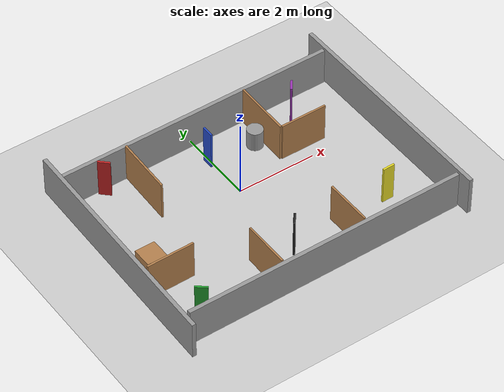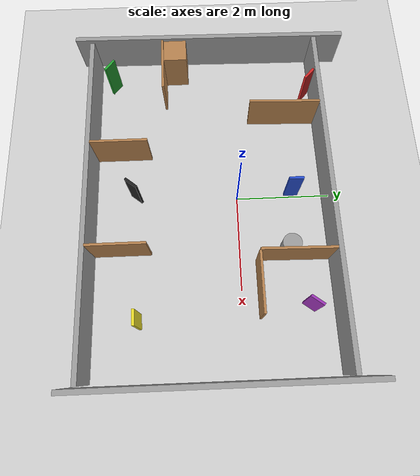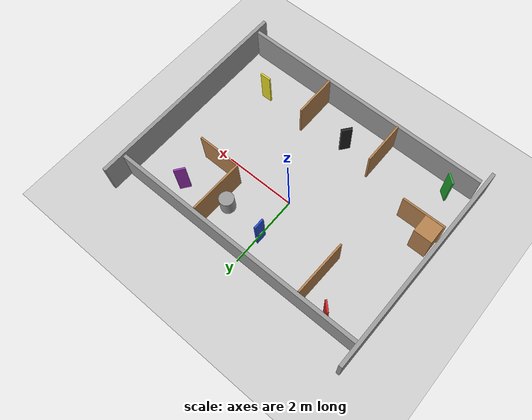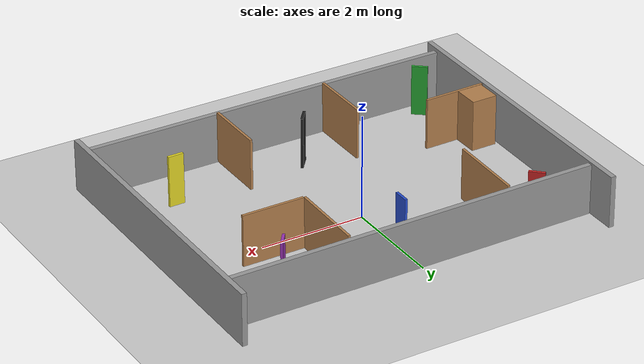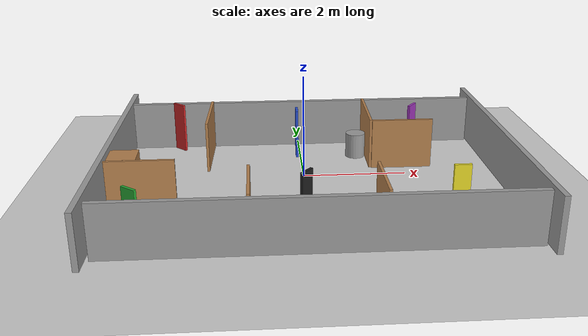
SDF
<sdf version="1.4">
 <world name="default">
  <light name="sun" type="directional">
   <pose>0 0 10 0 -0 0</pose>
   <diffuse>0.8 0.8 0.8 1</diffuse>
   <specular>0.2 0.2 0.2 1</specular>
   <attenuation>
    <range>1000</range>
    <constant>0.9</constant>
    <linear>0.01</linear>
    <quadratic>0.001</quadratic>
   </attenuation>
   <direction>-0.5 0.1 -0.9</direction>
  </light>
  <model name="ground_plane">
   <static>1</static>
   <link name="link">
    <collision name="collision">
     <geometry><plane><normal>0 0 1</normal><size>9 7</size></plane></geometry>
     <surface><friction><ode><mu>100</mu><mu2>50</mu2></ode></friction></surface>
    </collision>
    <visual name="visual">
     <cast_shadows>0</cast_shadows>
     <geometry><plane><normal>0 0 1</normal><size>9 7</size></plane></geometry>
     <material>
      <script><uri>file://media/materials/scripts/gazebo.material</uri><name>Gazebo/Grey</name></script>
     </material>
    </visual>
    <velocity_decay><linear>0</linear><angular>0</angular></velocity_decay>
   </link>
  </model>
  <physics type="ode">
   <max_step_size>0.01</max_step_size>
   <real_time_factor>1</real_time_factor>
   <real_time_update_rate>100</real_time_update_rate>
   <gravity>0 0 -9.8</gravity>
  </physics>
  <scene><ambient>0.4 0.4 0.4 1</ambient><background>0.7 0.7 0.7 1</background><shadows>1</shadows></scene>
  <model name="wall_1">
   <pose>-3.58387 -0.478378 0.485002 0.005008 7.4e-05 -0.014703</pose>
   <link name="link">
    <inertial>
     <mass>1</mass>
     <inertia><ixx>1</ixx><ixy>0</ixy><ixz>0</ixz><iyy>1</iyy><iyz>0</iyz><izz>1</izz></inertia>
    </inertial>
    <collision name="collision"><geometry><box><size>0.1 6 1</size></box></geometry></collision>
    <visual name="visual">
     <geometry><box><size>0.1 6 1</size></box></geometry>
     <material>
      <script><uri>file://media/materials/scripts/gazebo.material</uri><name>Gazebo/Grey</name></script>
     </material>
    </visual>
    <velocity_decay><linear>0</linear><angular>0</angular></velocity_decay>
   </link>
   <static>1</static>
  </model>
  <model name="wall_2">
   <pose>0.103091 1.90074 0.461548 0 -0 0.006046</pose>
   <link name="link">
    <inertial>
     <mass>1</mass>
     <inertia><ixx>1</ixx><ixy>0</ixy><ixz>0</ixz><iyy>1</iyy><iyz>0</iyz><izz>1</izz></inertia>
    </inertial>
    <collision name="collision"><geometry><box><size>7.2 0.1 1</size></box></geometry></collision>
    <visual name="visual">
     <geometry><box><size>7.2 0.1 1</size></box></geometry>
     <material>
      <script><uri>file://media/materials/scripts/gazebo.material</uri><name>Gazebo/Grey</name></script>
     </material>
    </visual>
    <velocity_decay><linear>0</linear><angular>0</angular></velocity_decay>
   </link>
   <static>1</static>
  </model>
  <model name="wall_3">
   <pose>3.776 -0.467225 0.499255 0 9e-05 0</pose>
   <link name="link">
    <inertial>
     <mass>1</mass>
     <inertia><ixx>1</ixx><ixy>0</ixy><ixz>0</ixz><iyy>1</iyy><iyz>0</iyz><izz>1</izz></inertia>
    </inertial>
    <collision name="collision"><geometry><box><size>0.1 6 1</size></box></geometry></collision>
    <visual name="visual">
     <geometry><box><size>0.1 6 1</size></box></geometry>
     <material>
      <script><uri>file://media/materials/scripts/gazebo.material</uri><name>Gazebo/Grey</name></script>
     </material>
    </visual>
    <velocity_decay><linear>0</linear><angular>0</angular></velocity_decay>
   </link>
   <static>1</static>
  </model>
  <model name="wall_4">
   <pose>0.0931 -3.10331 0.461557 0 -0 0</pose>
   <link name="link">
    <inertial>
     <mass>1</mass>
     <inertia><ixx>1</ixx><ixy>0</ixy><ixz>0</ixz><iyy>1</iyy><iyz>0</iyz><izz>1</izz></inertia>
    </inertial>
    <collision name="collision"><geometry><box><size>7.2 0.1 1</size></box></geometry></collision>
    <visual name="visual">
     <geometry><box><size>7.2 0.1 1</size></box></geometry>
     <material>
      <script><uri>file://media/materials/scripts/gazebo.material</uri><name>Gazebo/Grey</name></script>
     </material>
    </visual>
    <velocity_decay><linear>0</linear><angular>0</angular></velocity_decay>
   </link>
   <static>1</static>
  </model>
  <model name="inner_1">
   <pose>-1.85052 1.08849 0.499121 0 -1.8e-05 -0.029281</pose>
   <link name="link">
    <inertial>
     <mass>1</mass>
     <inertia><ixx>1</ixx><ixy>0</ixy><ixz>0</ixz><iyy>1</iyy><iyz>0</iyz><izz>1</izz></inertia>
    </inertial>
    <collision name="collision"><geometry><box><size>0.05 1.5 1</size></box></geometry></collision>
    <visual name="visual">
     <geometry><box><size>0.05 1.5 1</size></box></geometry>
     <material>
      <script><uri>file://media/materials/scripts/gazebo.material</uri><name>Gazebo/WoodFloor</name></script>
     </material>
    </visual>
    <velocity_decay><linear>0</linear><angular>0</angular></velocity_decay>
   </link>
   <static>0</static>
  </model>
  <model name="inner_2">
   <pose>-2.90178 -1.52625 0.499782 -3.3e-05 0.000364 0.012113</pose>
   <link name="link">
    <inertial>
     <mass>1</mass>
     <inertia><ixx>1</ixx><ixy>0</ixy><ixz>0</ixz><iyy>1</iyy><iyz>0</iyz><izz>1</izz></inertia>
    </inertial>
    <collision name="collision"><geometry><box><size>1.2 0.05 1</size></box></geometry></collision>
    <visual name="visual">
     <geometry><box><size>1.2 0.05 1</size></box></geometry>
     <material>
      <script><uri>file://media/materials/scripts/gazebo.material</uri><name>Gazebo/WoodFloor</name></script>
     </material>
    </visual>
    <velocity_decay><linear>0</linear><angular>0</angular></velocity_decay>
   </link>
   <static>0</static>
  </model>
  <model name="inner_3">
   <pose>-1.0446 -2.4533 0.499121 0 2.2e-05 0.000303</pose>
   <link name="link">
    <inertial>
     <mass>1</mass>
     <inertia><ixx>1</ixx><ixy>0</ixy><ixz>0</ixz><iyy>1</iyy><iyz>0</iyz><izz>1</izz></inertia>
    </inertial>
    <collision name="collision"><geometry><box><size>0.05 1.2 1</size></box></geometry></collision>
    <visual name="visual">
     <geometry><box><size>0.05 1.2 1</size></box></geometry>
     <material>
      <script><uri>file://media/materials/scripts/gazebo.material</uri><name>Gazebo/WoodFloor</name></script>
     </material>
    </visual>
    <velocity_decay><linear>0</linear><angular>0</angular></velocity_decay>
   </link>
   <static>0</static>
  </model>
  <model name="inner_4">
   <pose>1.15647 -2.45328 0.499121 6.61744e-24 2.2e-05 0.001161</pose>
   <link name="link">
    <inertial>
     <mass>1</mass>
     <inertia><ixx>1</ixx><ixy>0</ixy><ixz>0</ixz><iyy>1</iyy><iyz>0</iyz><izz>1</izz></inertia>
    </inertial>
    <collision name="collision"><geometry><box><size>0.05 1.2 1</size></box></geometry></collision>
    <visual name="visual">
     <geometry><box><size>0.05 1.2 1</size></box></geometry>
     <material>
      <script><uri>file://media/materials/scripts/gazebo.material</uri><name>Gazebo/WoodFloor</name></script>
     </material>
    </visual>
    <velocity_decay><linear>0</linear><angular>0</angular></velocity_decay>
   </link>
   <static>0</static>
  </model>
  <model name="inner_5">
   <pose>1.36775 1.09871 0.499121 -1.05879e-22 1.8e-05 -0.01689</pose>
   <link name="link">
    <inertial>
     <mass>1</mass>
     <inertia><ixx>1</ixx><ixy>0</ixy><ixz>0</ixz><iyy>1</iyy><iyz>0</iyz><izz>1</izz></inertia>
    </inertial>
    <collision name="collision"><geometry><box><size>0.05 1.5 1</size></box></geometry></collision>
    <visual name="visual">
     <geometry><box><size>0.05 1.5 1</size></box></geometry>
     <material>
      <script><uri>file://media/materials/scripts/gazebo.material</uri><name>Gazebo/WoodFloor</name></script>
     </material>
    </visual>
    <velocity_decay><linear>0</linear><angular>0</angular></velocity_decay>
   </link>
   <static>0</static>
  </model>
  <model name="inner_6">
   <pose>1.98055 0.346214 0.499121 2.2e-05 -6.61744e-24 0.002176</pose>
   <link name="link">
    <inertial>
     <mass>1</mass>
     <inertia><ixx>1</ixx><ixy>0</ixy><ixz>0</ixz><iyy>1</iyy><iyz>0</iyz><izz>1</izz></inertia>
    </inertial>
    <collision name="collision"><geometry><box><size>1.2 0.05 1</size></box></geometry></collision>
    <visual name="visual">
     <geometry><box><size>1.2 0.05 1</size></box></geometry>
     <material>
      <script><uri>file://media/materials/scripts/gazebo.material</uri><name>Gazebo/WoodFloor</name></script>
     </material>
    </visual>
    <velocity_decay><linear>0</linear><angular>0</angular></velocity_decay>
   </link>
   <static>0</static>
  </model>
  <model name="panle_1">
   <pose>-2.51787 1.68516 0.499123 1.4e-05 -9e-06 0.807449</pose>
   <link name="link">
    <inertial>
     <mass>1</mass>
     <inertia><ixx>1</ixx><ixy>0</ixy><ixz>0</ixz><iyy>1</iyy><iyz>0</iyz><izz>1</izz></inertia>
    </inertial>
    <collision name="collision"><geometry><box><size>0.05 0.3 1</size></box></geometry></collision>
    <visual name="visual">
     <geometry><box><size>0.05 0.3 1</size></box></geometry>
     <material>
      <script><uri>file://media/materials/scripts/gazebo.material</uri><name>Gazebo/Red</name></script>
     </material>
    </visual>
    <velocity_decay><linear>0</linear><angular>0</angular></velocity_decay>
   </link>
   <static>0</static>
  </model>
  <model name="panle_2">
   <pose>-2.8971 -2.69116 0.499123 -1.4e-05 9e-06 0.889219</pose>
   <link name="link">
    <inertial>
     <mass>1</mass>
     <inertia><ixx>1</ixx><ixy>0</ixy><ixz>0</ixz><iyy>1</iyy><iyz>0</iyz><izz>1</izz></inertia>
    </inertial>
    <collision name="collision"><geometry><box><size>0.05 0.3 1</size></box></geometry></collision>
    <visual name="visual">
     <geometry><box><size>0.05 0.3 1</size></box></geometry>
     <material>
      <script><uri>file://media/materials/scripts/gazebo.material</uri><name>Gazebo/Green</name></script>
     </material>
    </visual>
    <velocity_decay><linear>0</linear><angular>0</angular></velocity_decay>
   </link>
   <static>0</static>
  </model>
  <model name="panle_3">
   <pose>-0.071095 1.17743 0.499123 1.4e-05 9e-06 -0.006004</pose>
   <link name="link">
    <inertial>
     <mass>1</mass>
     <inertia><ixx>1</ixx><ixy>0</ixy><ixz>0</ixz><iyy>1</iyy><iyz>0</iyz><izz>1</izz></inertia>
    </inertial>
    <collision name="collision"><geometry><box><size>0.05 0.3 1</size></box></geometry></collision>
    <visual name="visual">
     <geometry><box><size>0.05 0.3 1</size></box></geometry>
     <material>
      <script><uri>file://media/materials/scripts/gazebo.material</uri><name>Gazebo/Blue</name></script>
     </material>
    </visual>
    <velocity_decay><linear>0</linear><angular>0</angular></velocity_decay>
   </link>
   <static>0</static>
  </model>
  <model name="panle_4">
   <pose>-0.093473 -2.17468 0.499123 1.4e-05 -9e-06 -0.673849</pose>
   <link name="link">
    <inertial>
     <mass>1</mass>
     <inertia><ixx>1</ixx><ixy>0</ixy><ixz>0</ixz><iyy>1</iyy><iyz>0</iyz><izz>1</izz></inertia>
    </inertial>
    <collision name="collision"><geometry><box><size>0.05 0.3 1</size></box></geometry></collision>
    <visual name="visual">
     <geometry><box><size>0.05 0.3 1</size></box></geometry>
     <material>
      <script><uri>file://media/materials/scripts/gazebo.material</uri><name>Gazebo/Black</name></script>
     </material>
    </visual>
    <velocity_decay><linear>0</linear><angular>0</angular></velocity_decay>
   </link>
   <static>0</static>
  </model>
  <model name="panle_5">
   <pose>2.36792 1.3452 0.499123 1.4e-05 9e-06 -0.640838</pose>
   <link name="link">
    <inertial>
     <mass>1</mass>
     <inertia><ixx>1</ixx><ixy>0</ixy><ixz>0</ixz><iyy>1</iyy><iyz>0</iyz><izz>1</izz></inertia>
    </inertial>
    <collision name="collision"><geometry><box><size>0.05 0.3 1</size></box></geometry></collision>
    <visual name="visual">
     <geometry><box><size>0.05 0.3 1</size></box></geometry>
     <material>
      <script><uri>file://media/materials/scripts/gazebo.material</uri><name>Gazebo/Purple</name></script>
     </material>
    </visual>
    <velocity_decay><linear>0</linear><angular>0</angular></velocity_decay>
   </link>
   <static>0</static>
  </model>
  <model name="panle_6">
   <pose>2.5473 -2.08093 0.499123 1.4e-05 -9e-06 -1.55474</pose>
   <link name="link">
    <inertial>
     <mass>1</mass>
     <inertia><ixx>1</ixx><ixy>0</ixy><ixz>0</ixz><iyy>1</iyy><iyz>0</iyz><izz>1</izz></inertia>
    </inertial>
    <collision name="collision"><geometry><box><size>0.05 0.3 1</size></box></geometry></collision>
    <visual name="visual">
     <geometry><box><size>0.05 0.3 1</size></box></geometry>
     <material>
      <script><uri>file://media/materials/scripts/gazebo.material</uri><name>Gazebo/Yellow</name></script>
     </material>
    </visual>
    <velocity_decay><linear>0</linear><angular>0</angular></velocity_decay>
   </link>
   <static>0</static>
  </model>
  <model name="mark_1">
   <pose>-3.21648 -1.25317 0.5 0 -0 0.005111</pose>
   <link name="link">
    <inertial>
     <mass>1</mass>
     <inertia><ixx>1</ixx><ixy>0</ixy><ixz>0</ixz><iyy>1</iyy><iyz>0</iyz><izz>1</izz></inertia>
    </inertial>
    <collision name="collision"><geometry><box><size>0.5 0.5 1</size></box></geometry></collision>
    <visual name="visual">
     <geometry><box><size>0.5 0.5 1</size></box></geometry>
     <material>
      <script><uri>file://media/materials/scripts/gazebo.material</uri><name>Gazebo/WoodFloor</name></script>
     </material>
    </visual>
    <velocity_decay><linear>0</linear><angular>0</angular></velocity_decay>
   </link>
   <static>0</static>
  </model>
  <model name="mark_2">
   <pose>1.14187 1.05506 0.24912 0 -0 5e-06</pose>
   <link name="link">
    <inertial>
     <mass>1</mass>
     <inertia><ixx>1</ixx><ixy>0</ixy><ixz>0</ixz><iyy>1</iyy><iyz>0</iyz><izz>1</izz></inertia>
    </inertial>
    <collision name="collision">
     <geometry><cylinder><radius>0.2</radius><length>0.5</length></cylinder></geometry>
    </collision>
    <visual name="visual">
     <geometry><cylinder><radius>0.2</radius><length>0.5</length></cylinder></geometry>
     <material>
      <script><uri>file://media/materials/scripts/gazebo.material</uri><name>Gazebo/Grey</name></script>
     </material>
    </visual>
    <velocity_decay><linear>0</linear><angular>0</angular></velocity_decay>
   </link>
   <static>0</static>
  </model>
 </world>
</sdf>
